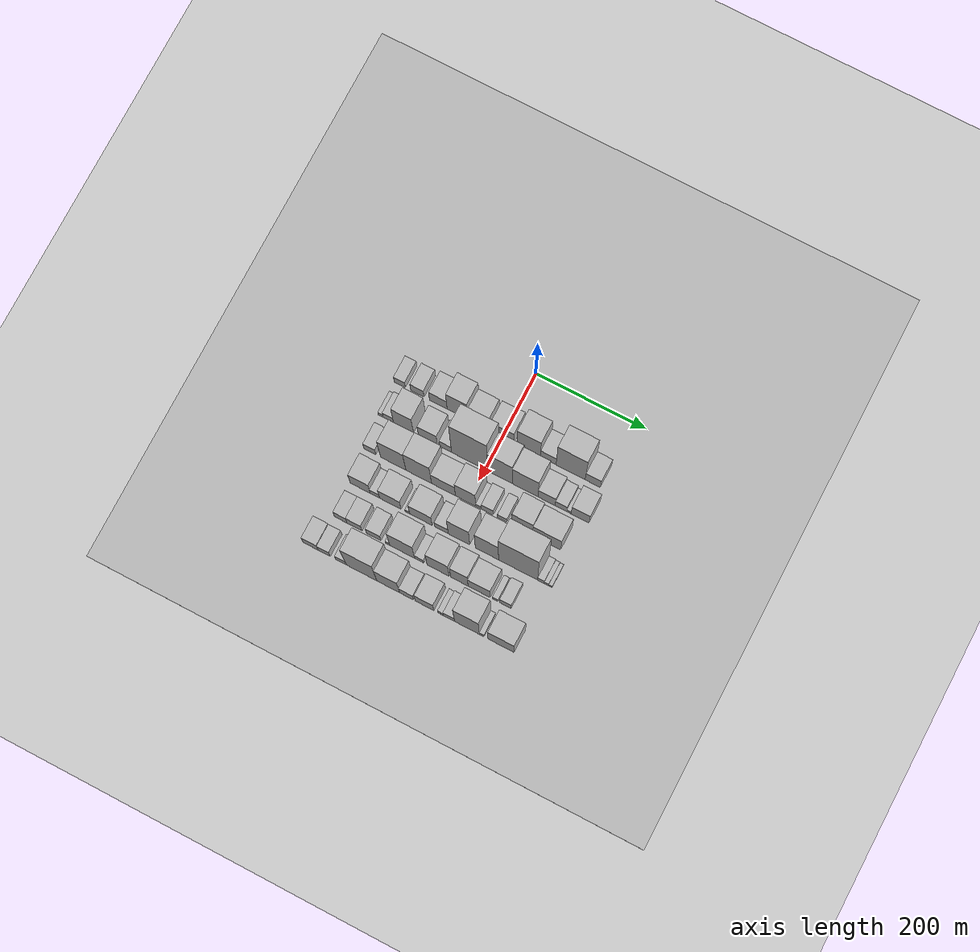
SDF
<sdf version="1.6">
 <world name="default">
  <include><name>ground_plane_1</name><uri>model://HANNAS_ground_plane</uri></include>
  <include>
   <name>ground_plane_2</name>
   <uri>model://HANNAS_ground_plane</uri>
   <pose>100 0 0  0 0 0</pose>
  </include>
  <model name="building_25">
   <static>1</static>
   <pose>100.0000 -188.0473 0 0.000000 0.000000 0.000000</pose>
   <link name="link">
    <pose>0 0 18.00 0 0 0</pose>
    <collision name="collision"><geometry><box><size>40.0000 20.3529 36.0000</size></box></geometry></collision>
    <visual name="visual">
     <cast_shadows>0</cast_shadows>
     <geometry><box><size>40.0000 20.3529 36.0000</size></box></geometry>
     <material>
      <script>
       <uri>model://HANNAS_wall/materials/scripts</uri>
       <uri>model://HANNAS_wall/materials/textures</uri>
       <name>vrc/HANNAS_wall</name>
      </script>
     </material>
    </visual>
   </link>
  </model>
  <model name="building_26">
   <static>1</static>
   <pose>100.0000 -155.6790 0 0.000000 0.000000 0.000000</pose>
   <link name="link">
    <pose>0 0 22.50 0 0 0</pose>
    <collision name="collision"><geometry><box><size>40.0000 24.3837 45.0000</size></box></geometry></collision>
    <visual name="visual">
     <cast_shadows>0</cast_shadows>
     <geometry><box><size>40.0000 24.3837 45.0000</size></box></geometry>
     <material>
      <script>
       <uri>model://HANNAS_wall/materials/scripts</uri>
       <uri>model://HANNAS_wall/materials/textures</uri>
       <name>vrc/HANNAS_wall</name>
      </script>
     </material>
    </visual>
   </link>
  </model>
  <model name="building_27">
   <static>1</static>
   <pose>100.0000 -117.2809 0 0.000000 0.000000 0.000000</pose>
   <link name="link">
    <pose>0 0 28.50 0 0 0</pose>
    <collision name="collision"><geometry><box><size>40.0000 32.4126 57.0000</size></box></geometry></collision>
    <visual name="visual">
     <cast_shadows>0</cast_shadows>
     <geometry><box><size>40.0000 32.4126 57.0000</size></box></geometry>
     <material>
      <script>
       <uri>model://HANNAS_wall/materials/scripts</uri>
       <uri>model://HANNAS_wall/materials/textures</uri>
       <name>vrc/HANNAS_wall</name>
      </script>
     </material>
    </visual>
   </link>
  </model>
  <model name="building_28">
   <static>1</static>
   <pose>100.0000 -82.4573 0 0.000000 0.000000 0.000000</pose>
   <link name="link">
    <pose>0 0 55.50 0 0 0</pose>
    <collision name="collision"><geometry><box><size>40.0000 37.2345 111.0000</size></box></geometry></collision>
    <visual name="visual">
     <cast_shadows>0</cast_shadows>
     <geometry><box><size>40.0000 37.2345 111.0000</size></box></geometry>
     <material>
      <script>
       <uri>model://HANNAS_wall/materials/scripts</uri>
       <uri>model://HANNAS_wall/materials/textures</uri>
       <name>vrc/HANNAS_wall</name>
      </script>
     </material>
    </visual>
   </link>
  </model>
  <model name="building_29">
   <static>1</static>
   <pose>100.0000 -44.9028 0 0.000000 0.000000 0.000000</pose>
   <link name="link">
    <pose>0 0 34.50 0 0 0</pose>
    <collision name="collision"><geometry><box><size>40.0000 37.8745 69.0000</size></box></geometry></collision>
    <visual name="visual">
     <cast_shadows>0</cast_shadows>
     <geometry><box><size>40.0000 37.8745 69.0000</size></box></geometry>
     <material>
      <script>
       <uri>model://HANNAS_wall/materials/scripts</uri>
       <uri>model://HANNAS_wall/materials/textures</uri>
       <name>vrc/HANNAS_wall</name>
      </script>
     </material>
    </visual>
   </link>
  </model>
  <model name="building_30">
   <static>1</static>
   <pose>100.0000 -0.0820 0 0.000000 0.000000 0.000000</pose>
   <link name="link">
    <pose>0 0 36.00 0 0 0</pose>
    <collision name="collision"><geometry><box><size>40.0000 41.7672 72.0000</size></box></geometry></collision>
    <visual name="visual">
     <cast_shadows>0</cast_shadows>
     <geometry><box><size>40.0000 41.7672 72.0000</size></box></geometry>
     <material>
      <script>
       <uri>model://HANNAS_wall/materials/scripts</uri>
       <uri>model://HANNAS_wall/materials/textures</uri>
       <name>vrc/HANNAS_wall</name>
      </script>
     </material>
    </visual>
   </link>
  </model>
  <model name="building_31">
   <static>1</static>
   <pose>100.0000 47.9381 0 0.000000 0.000000 0.000000</pose>
   <link name="link">
    <pose>0 0 55.50 0 0 0</pose>
    <collision name="collision"><geometry><box><size>40.0000 42.2730 111.0000</size></box></geometry></collision>
    <visual name="visual">
     <cast_shadows>0</cast_shadows>
     <geometry><box><size>40.0000 42.2730 111.0000</size></box></geometry>
     <material>
      <script>
       <uri>model://HANNAS_wall/materials/scripts</uri>
       <uri>model://HANNAS_wall/materials/textures</uri>
       <name>vrc/HANNAS_wall</name>
      </script>
     </material>
    </visual>
   </link>
  </model>
  <model name="building_32">
   <static>1</static>
   <pose>100.0000 83.3769 0 0.000000 0.000000 0.000000</pose>
   <link name="link">
    <pose>0 0 25.50 0 0 0</pose>
    <collision name="collision"><geometry><box><size>40.0000 28.6046 51.0000</size></box></geometry></collision>
    <visual name="visual">
     <cast_shadows>0</cast_shadows>
     <geometry><box><size>40.0000 28.6046 51.0000</size></box></geometry>
     <material>
      <script>
       <uri>model://HANNAS_wall/materials/scripts</uri>
       <uri>model://HANNAS_wall/materials/textures</uri>
       <name>vrc/HANNAS_wall</name>
      </script>
     </material>
    </visual>
   </link>
  </model>
  <model name="building_33">
   <static>1</static>
   <pose>100.0000 124.0069 0 0.000000 0.000000 0.000000</pose>
   <link name="link">
    <pose>0 0 73.50 0 0 0</pose>
    <collision name="collision"><geometry><box><size>40.0000 52.6554 147.0000</size></box></geometry></collision>
    <visual name="visual">
     <cast_shadows>0</cast_shadows>
     <geometry><box><size>40.0000 52.6554 147.0000</size></box></geometry>
     <material>
      <script>
       <uri>model://HANNAS_wall/materials/scripts</uri>
       <uri>model://HANNAS_wall/materials/textures</uri>
       <name>vrc/HANNAS_wall</name>
      </script>
     </material>
    </visual>
   </link>
  </model>
  <model name="building_34">
   <static>1</static>
   <pose>100.0000 164.1204 0 0.000000 0.000000 0.000000</pose>
   <link name="link">
    <pose>0 0 27.00 0 0 0</pose>
    <collision name="collision"><geometry><box><size>40.0000 27.5714 54.0000</size></box></geometry></collision>
    <visual name="visual">
     <cast_shadows>0</cast_shadows>
     <geometry><box><size>40.0000 27.5714 54.0000</size></box></geometry>
     <material>
      <script>
       <uri>model://HANNAS_wall/materials/scripts</uri>
       <uri>model://HANNAS_wall/materials/textures</uri>
       <name>vrc/HANNAS_wall</name>
      </script>
     </material>
    </visual>
   </link>
  </model>
  <model name="building_77">
   <static>1</static>
   <pose>160.0000 -191.3199 0 0.000000 0.000000 0.000000</pose>
   <link name="link">
    <pose>0 0 9.00 0 0 0</pose>
    <collision name="collision"><geometry><box><size>40.0000 8.8171 18.0000</size></box></geometry></collision>
    <visual name="visual">
     <cast_shadows>0</cast_shadows>
     <geometry><box><size>40.0000 8.8171 18.0000</size></box></geometry>
     <material>
      <script>
       <uri>model://HANNAS_wall/materials/scripts</uri>
       <uri>model://HANNAS_wall/materials/textures</uri>
       <name>vrc/HANNAS_wall</name>
      </script>
     </material>
    </visual>
   </link>
  </model>
  <model name="building_78">
   <static>1</static>
   <pose>160.0000 -177.2058 0 0.000000 0.000000 0.000000</pose>
   <link name="link">
    <pose>0 0 16.50 0 0 0</pose>
    <collision name="collision"><geometry><box><size>40.0000 19.4111 33.0000</size></box></geometry></collision>
    <visual name="visual">
     <cast_shadows>0</cast_shadows>
     <geometry><box><size>40.0000 19.4111 33.0000</size></box></geometry>
     <material>
      <script>
       <uri>model://HANNAS_wall/materials/scripts</uri>
       <uri>model://HANNAS_wall/materials/textures</uri>
       <name>vrc/HANNAS_wall</name>
      </script>
     </material>
    </visual>
   </link>
  </model>
  <model name="building_79">
   <static>1</static>
   <pose>160.0000 -149.1552 0 0.000000 0.000000 0.000000</pose>
   <link name="link">
    <pose>0 0 51.00 0 0 0</pose>
    <collision name="collision"><geometry><box><size>40.0000 36.6900 102.0000</size></box></geometry></collision>
    <visual name="visual">
     <cast_shadows>0</cast_shadows>
     <geometry><box><size>40.0000 36.6900 102.0000</size></box></geometry>
     <material>
      <script>
       <uri>model://HANNAS_wall/materials/scripts</uri>
       <uri>model://HANNAS_wall/materials/textures</uri>
       <name>vrc/HANNAS_wall</name>
      </script>
     </material>
    </visual>
   </link>
  </model>
  <model name="building_80">
   <static>1</static>
   <pose>160.0000 -104.5322 0 0.000000 0.000000 0.000000</pose>
   <link name="link">
    <pose>0 0 34.50 0 0 0</pose>
    <collision name="collision"><geometry><box><size>40.0000 34.5561 69.0000</size></box></geometry></collision>
    <visual name="visual">
     <cast_shadows>0</cast_shadows>
     <geometry><box><size>40.0000 34.5561 69.0000</size></box></geometry>
     <material>
      <script>
       <uri>model://HANNAS_wall/materials/scripts</uri>
       <uri>model://HANNAS_wall/materials/textures</uri>
       <name>vrc/HANNAS_wall</name>
      </script>
     </material>
    </visual>
   </link>
  </model>
  <model name="building_81">
   <static>1</static>
   <pose>160.0000 -72.2438 0 0.000000 0.000000 0.000000</pose>
   <link name="link">
    <pose>0 0 21.00 0 0 0</pose>
    <collision name="collision"><geometry><box><size>40.0000 22.0208 42.0000</size></box></geometry></collision>
    <visual name="visual">
     <cast_shadows>0</cast_shadows>
     <geometry><box><size>40.0000 22.0208 42.0000</size></box></geometry>
     <material>
      <script>
       <uri>model://HANNAS_wall/materials/scripts</uri>
       <uri>model://HANNAS_wall/materials/textures</uri>
       <name>vrc/HANNAS_wall</name>
      </script>
     </material>
    </visual>
   </link>
  </model>
  <model name="building_82">
   <static>1</static>
   <pose>160.0000 -28.4740 0 0.000000 0.000000 0.000000</pose>
   <link name="link">
    <pose>0 0 103.50 0 0 0</pose>
    <collision name="collision"><geometry><box><size>40.0000 65.5187 207.0000</size></box></geometry></collision>
    <visual name="visual">
     <cast_shadows>0</cast_shadows>
     <geometry><box><size>40.0000 65.5187 207.0000</size></box></geometry>
     <material>
      <script>
       <uri>model://HANNAS_wall/materials/scripts</uri>
       <uri>model://HANNAS_wall/materials/textures</uri>
       <name>vrc/HANNAS_wall</name>
      </script>
     </material>
    </visual>
   </link>
  </model>
  <model name="building_83">
   <static>1</static>
   <pose>160.0000 26.7133 0 0.000000 0.000000 0.000000</pose>
   <link name="link">
    <pose>0 0 69.00 0 0 0</pose>
    <collision name="collision"><geometry><box><size>40.0000 44.8558 138.0000</size></box></geometry></collision>
    <visual name="visual">
     <cast_shadows>0</cast_shadows>
     <geometry><box><size>40.0000 44.8558 138.0000</size></box></geometry>
     <material>
      <script>
       <uri>model://HANNAS_wall/materials/scripts</uri>
       <uri>model://HANNAS_wall/materials/textures</uri>
       <name>vrc/HANNAS_wall</name>
      </script>
     </material>
    </visual>
   </link>
  </model>
  <model name="building_84">
   <static>1</static>
   <pose>160.0000 72.5643 0 0.000000 0.000000 0.000000</pose>
   <link name="link">
    <pose>0 0 61.50 0 0 0</pose>
    <collision name="collision"><geometry><box><size>40.0000 46.8463 123.0000</size></box></geometry></collision>
    <visual name="visual">
     <cast_shadows>0</cast_shadows>
     <geometry><box><size>40.0000 46.8463 123.0000</size></box></geometry>
     <material>
      <script>
       <uri>model://HANNAS_wall/materials/scripts</uri>
       <uri>model://HANNAS_wall/materials/textures</uri>
       <name>vrc/HANNAS_wall</name>
      </script>
     </material>
    </visual>
   </link>
  </model>
  <model name="building_85">
   <static>1</static>
   <pose>160.0000 111.5400 0 0.000000 0.000000 0.000000</pose>
   <link name="link">
    <pose>0 0 30.00 0 0 0</pose>
    <collision name="collision"><geometry><box><size>40.0000 31.1051 60.0000</size></box></geometry></collision>
    <visual name="visual">
     <cast_shadows>0</cast_shadows>
     <geometry><box><size>40.0000 31.1051 60.0000</size></box></geometry>
     <material>
      <script>
       <uri>model://HANNAS_wall/materials/scripts</uri>
       <uri>model://HANNAS_wall/materials/textures</uri>
       <name>vrc/HANNAS_wall</name>
      </script>
     </material>
    </visual>
   </link>
  </model>
  <model name="building_86">
   <static>1</static>
   <pose>160.0000 137.5677 0 0.000000 0.000000 0.000000</pose>
   <link name="link">
    <pose>0 0 19.50 0 0 0</pose>
    <collision name="collision"><geometry><box><size>40.0000 20.9502 39.0000</size></box></geometry></collision>
    <visual name="visual">
     <cast_shadows>0</cast_shadows>
     <geometry><box><size>40.0000 20.9502 39.0000</size></box></geometry>
     <material>
      <script>
       <uri>model://HANNAS_wall/materials/scripts</uri>
       <uri>model://HANNAS_wall/materials/textures</uri>
       <name>vrc/HANNAS_wall</name>
      </script>
     </material>
    </visual>
   </link>
  </model>
  <model name="building_87">
   <static>1</static>
   <pose>160.0000 151.9933 0 0.000000 0.000000 0.000000</pose>
   <link name="link">
    <pose>0 0 9.00 0 0 0</pose>
    <collision name="collision"><geometry><box><size>40.0000 7.9010 18.0000</size></box></geometry></collision>
    <visual name="visual">
     <cast_shadows>0</cast_shadows>
     <geometry><box><size>40.0000 7.9010 18.0000</size></box></geometry>
     <material>
      <script>
       <uri>model://HANNAS_wall/materials/scripts</uri>
       <uri>model://HANNAS_wall/materials/textures</uri>
       <name>vrc/HANNAS_wall</name>
      </script>
     </material>
    </visual>
   </link>
  </model>
  <model name="building_88">
   <static>1</static>
   <pose>160.0000 172.0946 0 0.000000 0.000000 0.000000</pose>
   <link name="link">
    <pose>0 0 31.50 0 0 0</pose>
    <collision name="collision"><geometry><box><size>40.0000 32.3016 63.0000</size></box></geometry></collision>
    <visual name="visual">
     <cast_shadows>0</cast_shadows>
     <geometry><box><size>40.0000 32.3016 63.0000</size></box></geometry>
     <material>
      <script>
       <uri>model://HANNAS_wall/materials/scripts</uri>
       <uri>model://HANNAS_wall/materials/textures</uri>
       <name>vrc/HANNAS_wall</name>
      </script>
     </material>
    </visual>
   </link>
  </model>
  <model name="building_133">
   <static>1</static>
   <pose>220.0000 -178.8278 0 0.000000 0.000000 0.000000</pose>
   <link name="link">
    <pose>0 0 19.50 0 0 0</pose>
    <collision name="collision"><geometry><box><size>40.0000 21.8377 39.0000</size></box></geometry></collision>
    <visual name="visual">
     <cast_shadows>0</cast_shadows>
     <geometry><box><size>40.0000 21.8377 39.0000</size></box></geometry>
     <material>
      <script>
       <uri>model://HANNAS_wall/materials/scripts</uri>
       <uri>model://HANNAS_wall/materials/textures</uri>
       <name>vrc/HANNAS_wall</name>
      </script>
     </material>
    </visual>
   </link>
  </model>
  <model name="building_134">
   <static>1</static>
   <pose>220.0000 -135.7961 0 0.000000 0.000000 0.000000</pose>
   <link name="link">
    <pose>0 0 63.00 0 0 0</pose>
    <collision name="collision"><geometry><box><size>40.0000 46.2257 126.0000</size></box></geometry></collision>
    <visual name="visual">
     <cast_shadows>0</cast_shadows>
     <geometry><box><size>40.0000 46.2257 126.0000</size></box></geometry>
     <material>
      <script>
       <uri>model://HANNAS_wall/materials/scripts</uri>
       <uri>model://HANNAS_wall/materials/textures</uri>
       <name>vrc/HANNAS_wall</name>
      </script>
     </material>
    </visual>
   </link>
  </model>
  <model name="building_135">
   <static>1</static>
   <pose>220.0000 -89.2988 0 0.000000 0.000000 0.000000</pose>
   <link name="link">
    <pose>0 0 66.00 0 0 0</pose>
    <collision name="collision"><geometry><box><size>40.0000 46.7689 132.0000</size></box></geometry></collision>
    <visual name="visual">
     <cast_shadows>0</cast_shadows>
     <geometry><box><size>40.0000 46.7689 132.0000</size></box></geometry>
     <material>
      <script>
       <uri>model://HANNAS_wall/materials/scripts</uri>
       <uri>model://HANNAS_wall/materials/textures</uri>
       <name>vrc/HANNAS_wall</name>
      </script>
     </material>
    </visual>
   </link>
  </model>
  <model name="building_136">
   <static>1</static>
   <pose>220.0000 -44.2200 0 0.000000 0.000000 0.000000</pose>
   <link name="link">
    <pose>0 0 37.50 0 0 0</pose>
    <collision name="collision"><geometry><box><size>40.0000 43.3888 75.0000</size></box></geometry></collision>
    <visual name="visual">
     <cast_shadows>0</cast_shadows>
     <geometry><box><size>40.0000 43.3888 75.0000</size></box></geometry>
     <material>
      <script>
       <uri>model://HANNAS_wall/materials/scripts</uri>
       <uri>model://HANNAS_wall/materials/textures</uri>
       <name>vrc/HANNAS_wall</name>
      </script>
     </material>
    </visual>
   </link>
  </model>
  <model name="building_137">
   <static>1</static>
   <pose>220.0000 -4.0990 0 0.000000 0.000000 0.000000</pose>
   <link name="link">
    <pose>0 0 49.50 0 0 0</pose>
    <collision name="collision"><geometry><box><size>40.0000 36.8533 99.0000</size></box></geometry></collision>
    <visual name="visual">
     <cast_shadows>0</cast_shadows>
     <geometry><box><size>40.0000 36.8533 99.0000</size></box></geometry>
     <material>
      <script>
       <uri>model://HANNAS_wall/materials/scripts</uri>
       <uri>model://HANNAS_wall/materials/textures</uri>
       <name>vrc/HANNAS_wall</name>
      </script>
     </material>
    </visual>
   </link>
  </model>
  <model name="building_138">
   <static>1</static>
   <pose>220.0000 19.5194 0 0.000000 0.000000 0.000000</pose>
   <link name="link">
    <pose>0 0 10.50 0 0 0</pose>
    <collision name="collision"><geometry><box><size>40.0000 10.3836 21.0000</size></box></geometry></collision>
    <visual name="visual">
     <cast_shadows>0</cast_shadows>
     <geometry><box><size>40.0000 10.3836 21.0000</size></box></geometry>
     <material>
      <script>
       <uri>model://HANNAS_wall/materials/scripts</uri>
       <uri>model://HANNAS_wall/materials/textures</uri>
       <name>vrc/HANNAS_wall</name>
      </script>
     </material>
    </visual>
   </link>
  </model>
  <model name="building_139">
   <static>1</static>
   <pose>220.0000 35.3768 0 0.000000 0.000000 0.000000</pose>
   <link name="link">
    <pose>0 0 21.00 0 0 0</pose>
    <collision name="collision"><geometry><box><size>40.0000 21.3311 42.0000</size></box></geometry></collision>
    <visual name="visual">
     <cast_shadows>0</cast_shadows>
     <geometry><box><size>40.0000 21.3311 42.0000</size></box></geometry>
     <material>
      <script>
       <uri>model://HANNAS_wall/materials/scripts</uri>
       <uri>model://HANNAS_wall/materials/textures</uri>
       <name>vrc/HANNAS_wall</name>
      </script>
     </material>
    </visual>
   </link>
  </model>
  <model name="building_140">
   <static>1</static>
   <pose>220.0000 62.4443 0 0.000000 0.000000 0.000000</pose>
   <link name="link">
    <pose>0 0 15.00 0 0 0</pose>
    <collision name="collision"><geometry><box><size>40.0000 16.8039 30.0000</size></box></geometry></collision>
    <visual name="visual">
     <cast_shadows>0</cast_shadows>
     <geometry><box><size>40.0000 16.8039 30.0000</size></box></geometry>
     <material>
      <script>
       <uri>model://HANNAS_wall/materials/scripts</uri>
       <uri>model://HANNAS_wall/materials/textures</uri>
       <name>vrc/HANNAS_wall</name>
      </script>
     </material>
    </visual>
   </link>
  </model>
  <model name="building_141">
   <static>1</static>
   <pose>220.0000 98.6002 0 0.000000 0.000000 0.000000</pose>
   <link name="link">
    <pose>0 0 51.00 0 0 0</pose>
    <collision name="collision"><geometry><box><size>40.0000 37.5079 102.0000</size></box></geometry></collision>
    <visual name="visual">
     <cast_shadows>0</cast_shadows>
     <geometry><box><size>40.0000 37.5079 102.0000</size></box></geometry>
     <material>
      <script>
       <uri>model://HANNAS_wall/materials/scripts</uri>
       <uri>model://HANNAS_wall/materials/textures</uri>
       <name>vrc/HANNAS_wall</name>
      </script>
     </material>
    </visual>
   </link>
  </model>
  <model name="building_142">
   <static>1</static>
   <pose>220.0000 142.7027 0 0.000000 0.000000 0.000000</pose>
   <link name="link">
    <pose>0 0 43.50 0 0 0</pose>
    <collision name="collision"><geometry><box><size>40.0000 50.6970 87.0000</size></box></geometry></collision>
    <visual name="visual">
     <cast_shadows>0</cast_shadows>
     <geometry><box><size>40.0000 50.6970 87.0000</size></box></geometry>
     <material>
      <script>
       <uri>model://HANNAS_wall/materials/scripts</uri>
       <uri>model://HANNAS_wall/materials/textures</uri>
       <name>vrc/HANNAS_wall</name>
      </script>
     </material>
    </visual>
   </link>
  </model>
  <model name="building_191">
   <static>1</static>
   <pose>280.0000 -163.8399 0 0.000000 0.000000 0.000000</pose>
   <link name="link">
    <pose>0 0 36.00 0 0 0</pose>
    <collision name="collision"><geometry><box><size>40.0000 36.4874 72.0000</size></box></geometry></collision>
    <visual name="visual">
     <cast_shadows>0</cast_shadows>
     <geometry><box><size>40.0000 36.4874 72.0000</size></box></geometry>
     <material>
      <script>
       <uri>model://HANNAS_wall/materials/scripts</uri>
       <uri>model://HANNAS_wall/materials/textures</uri>
       <name>vrc/HANNAS_wall</name>
      </script>
     </material>
    </visual>
   </link>
  </model>
  <model name="building_192">
   <static>1</static>
   <pose>280.0000 -137.1192 0 0.000000 0.000000 0.000000</pose>
   <link name="link">
    <pose>0 0 16.50 0 0 0</pose>
    <collision name="collision"><geometry><box><size>40.0000 16.9541 33.0000</size></box></geometry></collision>
    <visual name="visual">
     <cast_shadows>0</cast_shadows>
     <geometry><box><size>40.0000 16.9541 33.0000</size></box></geometry>
     <material>
      <script>
       <uri>model://HANNAS_wall/materials/scripts</uri>
       <uri>model://HANNAS_wall/materials/textures</uri>
       <name>vrc/HANNAS_wall</name>
      </script>
     </material>
    </visual>
   </link>
  </model>
  <model name="building_193">
   <static>1</static>
   <pose>280.0000 -108.9316 0 0.000000 0.000000 0.000000</pose>
   <link name="link">
    <pose>0 0 34.50 0 0 0</pose>
    <collision name="collision"><geometry><box><size>40.0000 39.4210 69.0000</size></box></geometry></collision>
    <visual name="visual">
     <cast_shadows>0</cast_shadows>
     <geometry><box><size>40.0000 39.4210 69.0000</size></box></geometry>
     <material>
      <script>
       <uri>model://HANNAS_wall/materials/scripts</uri>
       <uri>model://HANNAS_wall/materials/textures</uri>
       <name>vrc/HANNAS_wall</name>
      </script>
     </material>
    </visual>
   </link>
  </model>
  <model name="building_194">
   <static>1</static>
   <pose>280.0000 -77.9429 0 0.000000 0.000000 0.000000</pose>
   <link name="link">
    <pose>0 0 9.00 0 0 0</pose>
    <collision name="collision"><geometry><box><size>40.0000 8.5564 18.0000</size></box></geometry></collision>
    <visual name="visual">
     <cast_shadows>0</cast_shadows>
     <geometry><box><size>40.0000 8.5564 18.0000</size></box></geometry>
     <material>
      <script>
       <uri>model://HANNAS_wall/materials/scripts</uri>
       <uri>model://HANNAS_wall/materials/textures</uri>
       <name>vrc/HANNAS_wall</name>
      </script>
     </material>
    </visual>
   </link>
  </model>
  <model name="building_195">
   <static>1</static>
   <pose>280.0000 -53.3676 0 0.000000 0.000000 0.000000</pose>
   <link name="link">
    <pose>0 0 37.50 0 0 0</pose>
    <collision name="collision"><geometry><box><size>40.0000 40.5941 75.0000</size></box></geometry></collision>
    <visual name="visual">
     <cast_shadows>0</cast_shadows>
     <geometry><box><size>40.0000 40.5941 75.0000</size></box></geometry>
     <material>
      <script>
       <uri>model://HANNAS_wall/materials/scripts</uri>
       <uri>model://HANNAS_wall/materials/textures</uri>
       <name>vrc/HANNAS_wall</name>
      </script>
     </material>
    </visual>
   </link>
  </model>
  <model name="building_196">
   <static>1</static>
   <pose>280.0000 -15.8394 0 0.000000 0.000000 0.000000</pose>
   <link name="link">
    <pose>0 0 21.00 0 0 0</pose>
    <collision name="collision"><geometry><box><size>40.0000 24.4624 42.0000</size></box></geometry></collision>
    <visual name="visual">
     <cast_shadows>0</cast_shadows>
     <geometry><box><size>40.0000 24.4624 42.0000</size></box></geometry>
     <material>
      <script>
       <uri>model://HANNAS_wall/materials/scripts</uri>
       <uri>model://HANNAS_wall/materials/textures</uri>
       <name>vrc/HANNAS_wall</name>
      </script>
     </material>
    </visual>
   </link>
  </model>
  <model name="building_197">
   <static>1</static>
   <pose>280.0000 15.7661 0 0.000000 0.000000 0.000000</pose>
   <link name="link">
    <pose>0 0 63.00 0 0 0</pose>
    <collision name="collision"><geometry><box><size>40.0000 38.7485 126.0000</size></box></geometry></collision>
    <visual name="visual">
     <cast_shadows>0</cast_shadows>
     <geometry><box><size>40.0000 38.7485 126.0000</size></box></geometry>
     <material>
      <script>
       <uri>model://HANNAS_wall/materials/scripts</uri>
       <uri>model://HANNAS_wall/materials/textures</uri>
       <name>vrc/HANNAS_wall</name>
      </script>
     </material>
    </visual>
   </link>
  </model>
  <model name="building_198">
   <static>1</static>
   <pose>280.0000 66.1749 0 0.000000 0.000000 0.000000</pose>
   <link name="link">
    <pose>0 0 64.50 0 0 0</pose>
    <collision name="collision"><geometry><box><size>40.0000 42.0691 129.0000</size></box></geometry></collision>
    <visual name="visual">
     <cast_shadows>0</cast_shadows>
     <geometry><box><size>40.0000 42.0691 129.0000</size></box></geometry>
     <material>
      <script>
       <uri>model://HANNAS_wall/materials/scripts</uri>
       <uri>model://HANNAS_wall/materials/textures</uri>
       <name>vrc/HANNAS_wall</name>
      </script>
     </material>
    </visual>
   </link>
  </model>
  <model name="building_199">
   <static>1</static>
   <pose>280.0000 122.4006 0 0.000000 0.000000 0.000000</pose>
   <link name="link">
    <pose>0 0 96.00 0 0 0</pose>
    <collision name="collision"><geometry><box><size>40.0000 70.3823 192.0000</size></box></geometry></collision>
    <visual name="visual">
     <cast_shadows>0</cast_shadows>
     <geometry><box><size>40.0000 70.3823 192.0000</size></box></geometry>
     <material>
      <script>
       <uri>model://HANNAS_wall/materials/scripts</uri>
       <uri>model://HANNAS_wall/materials/textures</uri>
       <name>vrc/HANNAS_wall</name>
      </script>
     </material>
    </visual>
   </link>
  </model>
  <model name="building_200">
   <static>1</static>
   <pose>280.0000 163.5555 0 0.000000 0.000000 0.000000</pose>
   <link name="link">
    <pose>0 0 12.00 0 0 0</pose>
    <collision name="collision"><geometry><box><size>40.0000 11.9275 24.0000</size></box></geometry></collision>
    <visual name="visual">
     <cast_shadows>0</cast_shadows>
     <geometry><box><size>40.0000 11.9275 24.0000</size></box></geometry>
     <material>
      <script>
       <uri>model://HANNAS_wall/materials/scripts</uri>
       <uri>model://HANNAS_wall/materials/textures</uri>
       <name>vrc/HANNAS_wall</name>
      </script>
     </material>
    </visual>
   </link>
  </model>
  <model name="building_201">
   <static>1</static>
   <pose>280.0000 173.4683 0 0.000000 0.000000 0.000000</pose>
   <link name="link">
    <pose>0 0 9.00 0 0 0</pose>
    <collision name="collision"><geometry><box><size>40.0000 7.8980 18.0000</size></box></geometry></collision>
    <visual name="visual">
     <cast_shadows>0</cast_shadows>
     <geometry><box><size>40.0000 7.8980 18.0000</size></box></geometry>
     <material>
      <script>
       <uri>model://HANNAS_wall/materials/scripts</uri>
       <uri>model://HANNAS_wall/materials/textures</uri>
       <name>vrc/HANNAS_wall</name>
      </script>
     </material>
    </visual>
   </link>
  </model>
  <model name="building_202">
   <static>1</static>
   <pose>280.0000 180.7177 0 0.000000 0.000000 0.000000</pose>
   <link name="link">
    <pose>0 0 7.50 0 0 0</pose>
    <collision name="collision"><geometry><box><size>40.0000 6.6009 15.0000</size></box></geometry></collision>
    <visual name="visual">
     <cast_shadows>0</cast_shadows>
     <geometry><box><size>40.0000 6.6009 15.0000</size></box></geometry>
     <material>
      <script>
       <uri>model://HANNAS_wall/materials/scripts</uri>
       <uri>model://HANNAS_wall/materials/textures</uri>
       <name>vrc/HANNAS_wall</name>
      </script>
     </material>
    </visual>
   </link>
  </model>
  <model name="building_246">
   <static>1</static>
   <pose>340.0000 -167.1207 0 0.000000 0.000000 0.000000</pose>
   <link name="link">
    <pose>0 0 22.50 0 0 0</pose>
    <collision name="collision"><geometry><box><size>40.0000 22.8859 45.0000</size></box></geometry></collision>
    <visual name="visual">
     <cast_shadows>0</cast_shadows>
     <geometry><box><size>40.0000 22.8859 45.0000</size></box></geometry>
     <material>
      <script>
       <uri>model://HANNAS_wall/materials/scripts</uri>
       <uri>model://HANNAS_wall/materials/textures</uri>
       <name>vrc/HANNAS_wall</name>
      </script>
     </material>
    </visual>
   </link>
  </model>
  <model name="building_247">
   <static>1</static>
   <pose>340.0000 -142.0104 0 0.000000 0.000000 0.000000</pose>
   <link name="link">
    <pose>0 0 24.00 0 0 0</pose>
    <collision name="collision"><geometry><box><size>40.0000 27.3347 48.0000</size></box></geometry></collision>
    <visual name="visual">
     <cast_shadows>0</cast_shadows>
     <geometry><box><size>40.0000 27.3347 48.0000</size></box></geometry>
     <material>
      <script>
       <uri>model://HANNAS_wall/materials/scripts</uri>
       <uri>model://HANNAS_wall/materials/textures</uri>
       <name>vrc/HANNAS_wall</name>
      </script>
     </material>
    </visual>
   </link>
  </model>
  <model name="building_248">
   <static>1</static>
   <pose>340.0000 -107.0741 0 0.000000 0.000000 0.000000</pose>
   <link name="link">
    <pose>0 0 22.50 0 0 0</pose>
    <collision name="collision"><geometry><box><size>40.0000 26.5377 45.0000</size></box></geometry></collision>
    <visual name="visual">
     <cast_shadows>0</cast_shadows>
     <geometry><box><size>40.0000 26.5377 45.0000</size></box></geometry>
     <material>
      <script>
       <uri>model://HANNAS_wall/materials/scripts</uri>
       <uri>model://HANNAS_wall/materials/textures</uri>
       <name>vrc/HANNAS_wall</name>
      </script>
     </material>
    </visual>
   </link>
  </model>
  <model name="building_249">
   <static>1</static>
   <pose>340.0000 -81.9437 0 0.000000 0.000000 0.000000</pose>
   <link name="link">
    <pose>0 0 9.00 0 0 0</pose>
    <collision name="collision"><geometry><box><size>40.0000 7.7231 18.0000</size></box></geometry></collision>
    <visual name="visual">
     <cast_shadows>0</cast_shadows>
     <geometry><box><size>40.0000 7.7231 18.0000</size></box></geometry>
     <material>
      <script>
       <uri>model://HANNAS_wall/materials/scripts</uri>
       <uri>model://HANNAS_wall/materials/textures</uri>
       <name>vrc/HANNAS_wall</name>
      </script>
     </material>
    </visual>
   </link>
  </model>
  <model name="building_250">
   <static>1</static>
   <pose>340.0000 -55.3689 0 0.000000 0.000000 0.000000</pose>
   <link name="link">
    <pose>0 0 57.00 0 0 0</pose>
    <collision name="collision"><geometry><box><size>40.0000 45.4265 114.0000</size></box></geometry></collision>
    <visual name="visual">
     <cast_shadows>0</cast_shadows>
     <geometry><box><size>40.0000 45.4265 114.0000</size></box></geometry>
     <material>
      <script>
       <uri>model://HANNAS_wall/materials/scripts</uri>
       <uri>model://HANNAS_wall/materials/textures</uri>
       <name>vrc/HANNAS_wall</name>
      </script>
     </material>
    </visual>
   </link>
  </model>
  <model name="building_251">
   <static>1</static>
   <pose>340.0000 -24.4501 0 0.000000 0.000000 0.000000</pose>
   <link name="link">
    <pose>0 0 15.00 0 0 0</pose>
    <collision name="collision"><geometry><box><size>40.0000 16.4112 30.0000</size></box></geometry></collision>
    <visual name="visual">
     <cast_shadows>0</cast_shadows>
     <geometry><box><size>40.0000 16.4112 30.0000</size></box></geometry>
     <material>
      <script>
       <uri>model://HANNAS_wall/materials/scripts</uri>
       <uri>model://HANNAS_wall/materials/textures</uri>
       <name>vrc/HANNAS_wall</name>
      </script>
     </material>
    </visual>
   </link>
  </model>
  <model name="building_252">
   <static>1</static>
   <pose>340.0000 9.6430 0 0.000000 0.000000 0.000000</pose>
   <link name="link">
    <pose>0 0 52.50 0 0 0</pose>
    <collision name="collision"><geometry><box><size>40.0000 39.7749 105.0000</size></box></geometry></collision>
    <visual name="visual">
     <cast_shadows>0</cast_shadows>
     <geometry><box><size>40.0000 39.7749 105.0000</size></box></geometry>
     <material>
      <script>
       <uri>model://HANNAS_wall/materials/scripts</uri>
       <uri>model://HANNAS_wall/materials/textures</uri>
       <name>vrc/HANNAS_wall</name>
      </script>
     </material>
    </visual>
   </link>
  </model>
  <model name="building_253">
   <static>1</static>
   <pose>340.0000 48.1825 0 0.000000 0.000000 0.000000</pose>
   <link name="link">
    <pose>0 0 48.00 0 0 0</pose>
    <collision name="collision"><geometry><box><size>40.0000 31.3042 96.0000</size></box></geometry></collision>
    <visual name="visual">
     <cast_shadows>0</cast_shadows>
     <geometry><box><size>40.0000 31.3042 96.0000</size></box></geometry>
     <material>
      <script>
       <uri>model://HANNAS_wall/materials/scripts</uri>
       <uri>model://HANNAS_wall/materials/textures</uri>
       <name>vrc/HANNAS_wall</name>
      </script>
     </material>
    </visual>
   </link>
  </model>
  <model name="building_254">
   <static>1</static>
   <pose>340.0000 83.7827 0 0.000000 0.000000 0.000000</pose>
   <link name="link">
    <pose>0 0 36.00 0 0 0</pose>
    <collision name="collision"><geometry><box><size>40.0000 39.8962 72.0000</size></box></geometry></collision>
    <visual name="visual">
     <cast_shadows>0</cast_shadows>
     <geometry><box><size>40.0000 39.8962 72.0000</size></box></geometry>
     <material>
      <script>
       <uri>model://HANNAS_wall/materials/scripts</uri>
       <uri>model://HANNAS_wall/materials/textures</uri>
       <name>vrc/HANNAS_wall</name>
      </script>
     </material>
    </visual>
   </link>
  </model>
  <model name="building_255">
   <static>1</static>
   <pose>340.0000 112.8181 0 0.000000 0.000000 0.000000</pose>
   <link name="link">
    <pose>0 0 10.50 0 0 0</pose>
    <collision name="collision"><geometry><box><size>40.0000 10.1746 21.0000</size></box></geometry></collision>
    <visual name="visual">
     <cast_shadows>0</cast_shadows>
     <geometry><box><size>40.0000 10.1746 21.0000</size></box></geometry>
     <material>
      <script>
       <uri>model://HANNAS_wall/materials/scripts</uri>
       <uri>model://HANNAS_wall/materials/textures</uri>
       <name>vrc/HANNAS_wall</name>
      </script>
     </material>
    </visual>
   </link>
  </model>
  <model name="building_256">
   <static>1</static>
   <pose>340.0000 131.1864 0 0.000000 0.000000 0.000000</pose>
   <link name="link">
    <pose>0 0 19.50 0 0 0</pose>
    <collision name="collision"><geometry><box><size>40.0000 20.5619 39.0000</size></box></geometry></collision>
    <visual name="visual">
     <cast_shadows>0</cast_shadows>
     <geometry><box><size>40.0000 20.5619 39.0000</size></box></geometry>
     <material>
      <script>
       <uri>model://HANNAS_wall/materials/scripts</uri>
       <uri>model://HANNAS_wall/materials/textures</uri>
       <name>vrc/HANNAS_wall</name>
      </script>
     </material>
    </visual>
   </link>
  </model>
  <model name="building_301">
   <static>1</static>
   <pose>400.0000 -189.2011 0 0.000000 0.000000 0.000000</pose>
   <link name="link">
    <pose>0 0 24.00 0 0 0</pose>
    <collision name="collision"><geometry><box><size>40.0000 27.2254 48.0000</size></box></geometry></collision>
    <visual name="visual">
     <cast_shadows>0</cast_shadows>
     <geometry><box><size>40.0000 27.2254 48.0000</size></box></geometry>
     <material>
      <script>
       <uri>model://HANNAS_wall/materials/scripts</uri>
       <uri>model://HANNAS_wall/materials/textures</uri>
       <name>vrc/HANNAS_wall</name>
      </script>
     </material>
    </visual>
   </link>
  </model>
  <model name="building_302">
   <static>1</static>
   <pose>400.0000 -164.6538 0 0.000000 0.000000 0.000000</pose>
   <link name="link">
    <pose>0 0 21.00 0 0 0</pose>
    <collision name="collision"><geometry><box><size>40.0000 21.8691 42.0000</size></box></geometry></collision>
    <visual name="visual">
     <cast_shadows>0</cast_shadows>
     <geometry><box><size>40.0000 21.8691 42.0000</size></box></geometry>
     <material>
      <script>
       <uri>model://HANNAS_wall/materials/scripts</uri>
       <uri>model://HANNAS_wall/materials/textures</uri>
       <name>vrc/HANNAS_wall</name>
      </script>
     </material>
    </visual>
   </link>
  </model>
  <model name="building_303">
   <static>1</static>
   <pose>400.0000 -134.1565 0 0.000000 0.000000 0.000000</pose>
   <link name="link">
    <pose>0 0 18.00 0 0 0</pose>
    <collision name="collision"><geometry><box><size>40.0000 19.1256 36.0000</size></box></geometry></collision>
    <visual name="visual">
     <cast_shadows>0</cast_shadows>
     <geometry><box><size>40.0000 19.1256 36.0000</size></box></geometry>
     <material>
      <script>
       <uri>model://HANNAS_wall/materials/scripts</uri>
       <uri>model://HANNAS_wall/materials/textures</uri>
       <name>vrc/HANNAS_wall</name>
      </script>
     </material>
    </visual>
   </link>
  </model>
  <model name="building_304">
   <static>1</static>
   <pose>400.0000 -96.7739 0 0.000000 0.000000 0.000000</pose>
   <link name="link">
    <pose>0 0 78.00 0 0 0</pose>
    <collision name="collision"><geometry><box><size>40.0000 55.6395 156.0000</size></box></geometry></collision>
    <visual name="visual">
     <cast_shadows>0</cast_shadows>
     <geometry><box><size>40.0000 55.6395 156.0000</size></box></geometry>
     <material>
      <script>
       <uri>model://HANNAS_wall/materials/scripts</uri>
       <uri>model://HANNAS_wall/materials/textures</uri>
       <name>vrc/HANNAS_wall</name>
      </script>
     </material>
    </visual>
   </link>
  </model>
  <model name="building_305">
   <static>1</static>
   <pose>400.0000 -48.3775 0 0.000000 0.000000 0.000000</pose>
   <link name="link">
    <pose>0 0 54.00 0 0 0</pose>
    <collision name="collision"><geometry><box><size>40.0000 41.1534 108.0000</size></box></geometry></collision>
    <visual name="visual">
     <cast_shadows>0</cast_shadows>
     <geometry><box><size>40.0000 41.1534 108.0000</size></box></geometry>
     <material>
      <script>
       <uri>model://HANNAS_wall/materials/scripts</uri>
       <uri>model://HANNAS_wall/materials/textures</uri>
       <name>vrc/HANNAS_wall</name>
      </script>
     </material>
    </visual>
   </link>
  </model>
  <model name="building_306">
   <static>1</static>
   <pose>400.0000 -15.2167 0 0.000000 0.000000 0.000000</pose>
   <link name="link">
    <pose>0 0 24.00 0 0 0</pose>
    <collision name="collision"><geometry><box><size>40.0000 25.1681 48.0000</size></box></geometry></collision>
    <visual name="visual">
     <cast_shadows>0</cast_shadows>
     <geometry><box><size>40.0000 25.1681 48.0000</size></box></geometry>
     <material>
      <script>
       <uri>model://HANNAS_wall/materials/scripts</uri>
       <uri>model://HANNAS_wall/materials/textures</uri>
       <name>vrc/HANNAS_wall</name>
      </script>
     </material>
    </visual>
   </link>
  </model>
  <model name="building_307">
   <static>1</static>
   <pose>400.0000 17.0868 0 0.000000 0.000000 0.000000</pose>
   <link name="link">
    <pose>0 0 31.50 0 0 0</pose>
    <collision name="collision"><geometry><box><size>40.0000 33.4389 63.0000</size></box></geometry></collision>
    <visual name="visual">
     <cast_shadows>0</cast_shadows>
     <geometry><box><size>40.0000 33.4389 63.0000</size></box></geometry>
     <material>
      <script>
       <uri>model://HANNAS_wall/materials/scripts</uri>
       <uri>model://HANNAS_wall/materials/textures</uri>
       <name>vrc/HANNAS_wall</name>
      </script>
     </material>
    </visual>
   </link>
  </model>
  <model name="building_308">
   <static>1</static>
   <pose>400.0000 45.8418 0 0.000000 0.000000 0.000000</pose>
   <link name="link">
    <pose>0 0 12.00 0 0 0</pose>
    <collision name="collision"><geometry><box><size>40.0000 10.0711 24.0000</size></box></geometry></collision>
    <visual name="visual">
     <cast_shadows>0</cast_shadows>
     <geometry><box><size>40.0000 10.0711 24.0000</size></box></geometry>
     <material>
      <script>
       <uri>model://HANNAS_wall/materials/scripts</uri>
       <uri>model://HANNAS_wall/materials/textures</uri>
       <name>vrc/HANNAS_wall</name>
      </script>
     </material>
    </visual>
   </link>
  </model>
  <model name="building_309">
   <static>1</static>
   <pose>400.0000 60.9591 0 0.000000 0.000000 0.000000</pose>
   <link name="link">
    <pose>0 0 18.00 0 0 0</pose>
    <collision name="collision"><geometry><box><size>40.0000 20.1636 36.0000</size></box></geometry></collision>
    <visual name="visual">
     <cast_shadows>0</cast_shadows>
     <geometry><box><size>40.0000 20.1636 36.0000</size></box></geometry>
     <material>
      <script>
       <uri>model://HANNAS_wall/materials/scripts</uri>
       <uri>model://HANNAS_wall/materials/textures</uri>
       <name>vrc/HANNAS_wall</name>
      </script>
     </material>
    </visual>
   </link>
  </model>
  <model name="building_310">
   <static>1</static>
   <pose>400.0000 93.2893 0 0.000000 0.000000 0.000000</pose>
   <link name="link">
    <pose>0 0 70.50 0 0 0</pose>
    <collision name="collision"><geometry><box><size>40.0000 44.4968 141.0000</size></box></geometry></collision>
    <visual name="visual">
     <cast_shadows>0</cast_shadows>
     <geometry><box><size>40.0000 44.4968 141.0000</size></box></geometry>
     <material>
      <script>
       <uri>model://HANNAS_wall/materials/scripts</uri>
       <uri>model://HANNAS_wall/materials/textures</uri>
       <name>vrc/HANNAS_wall</name>
      </script>
     </material>
    </visual>
   </link>
  </model>
  <model name="building_311">
   <static>1</static>
   <pose>400.0000 119.8263 0 0.000000 0.000000 0.000000</pose>
   <link name="link">
    <pose>0 0 10.50 0 0 0</pose>
    <collision name="collision"><geometry><box><size>40.0000 8.5773 21.0000</size></box></geometry></collision>
    <visual name="visual">
     <cast_shadows>0</cast_shadows>
     <geometry><box><size>40.0000 8.5773 21.0000</size></box></geometry>
     <material>
      <script>
       <uri>model://HANNAS_wall/materials/scripts</uri>
       <uri>model://HANNAS_wall/materials/textures</uri>
       <name>vrc/HANNAS_wall</name>
      </script>
     </material>
    </visual>
   </link>
  </model>
  <model name="building_312">
   <static>1</static>
   <pose>400.0000 154.4203 0 0.000000 0.000000 0.000000</pose>
   <link name="link">
    <pose>0 0 45.00 0 0 0</pose>
    <collision name="collision"><geometry><box><size>40.0000 46.6106 90.0000</size></box></geometry></collision>
    <visual name="visual">
     <cast_shadows>0</cast_shadows>
     <geometry><box><size>40.0000 46.6106 90.0000</size></box></geometry>
     <material>
      <script>
       <uri>model://HANNAS_wall/materials/scripts</uri>
       <uri>model://HANNAS_wall/materials/textures</uri>
       <name>vrc/HANNAS_wall</name>
      </script>
     </material>
    </visual>
   </link>
  </model>
 </world>
</sdf>
